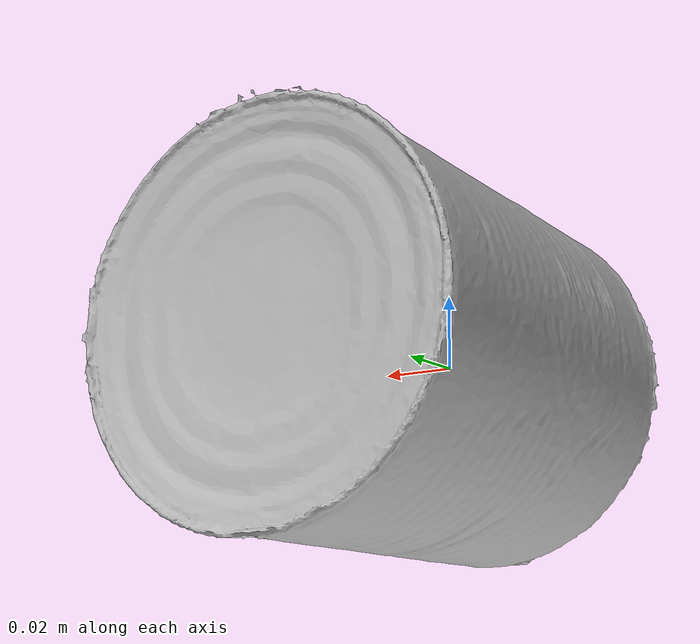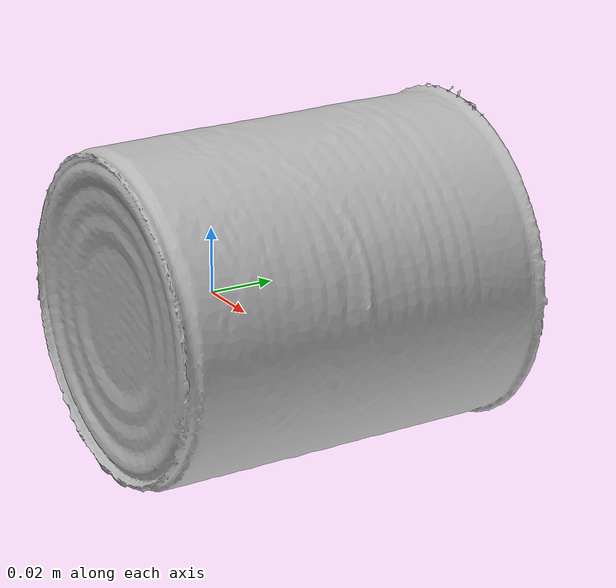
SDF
<?xml version='1.0'?>
<sdf version="1.4">
  <model name="RavioliLarge">
    <static>false</static>
    <link name="link">
      <inertial>
        <pose>0.00468427732251981 0.02232112686077417 -0.00015136621151635958 1.546463329360386 0.4151021955754006 3.1378200118276265</pose>
        <mass>0.09545991242234601</mass>
        <inertia>
          <ixx>0.00017227607661761754</ixx>
          <ixy>-2.1248630079800476e-20</ixy>
          <ixz>7.165794957024347e-21</ixz>
          <iyy>0.0001718878898771946</iyy>
          <iyz>6.047446599952942e-22</iyz>
          <izz>0.00012268900577032602</izz>
        </inertia>
      </inertial>
      <collision name="collision">
        <geometry>
          <mesh>
            <!-- Use a downsampled mesh for collisions -->
            <uri>model:///RavioliLarge/RavioliLarge_250_collision.obj</uri>
	        </mesh>
        </geometry>
        <surface>
      </surface>
      </collision>
      <visual name="visual">
        <geometry>
          <mesh>
            <uri>model:///RavioliLarge/RavioliLarge_25k_tex.obj</uri>
	        </mesh>
        </geometry>
        <material>
          <script>
            <uri>model:///RavioliLarge/RavioliLarge.material</uri>
            <name>RavioliLarge</name>
          </script>
        </material>
      </visual>
    </link>
  </model>
</sdf>
